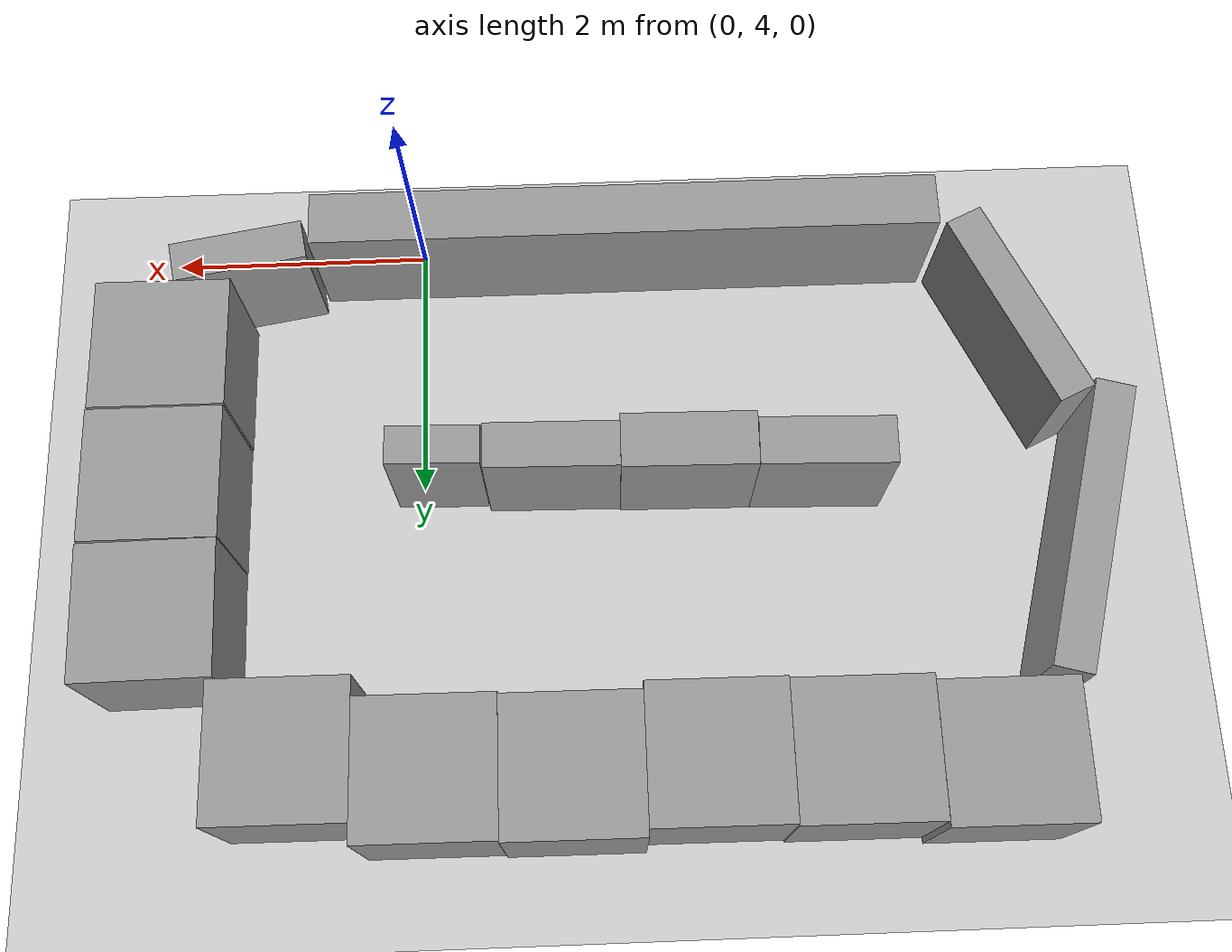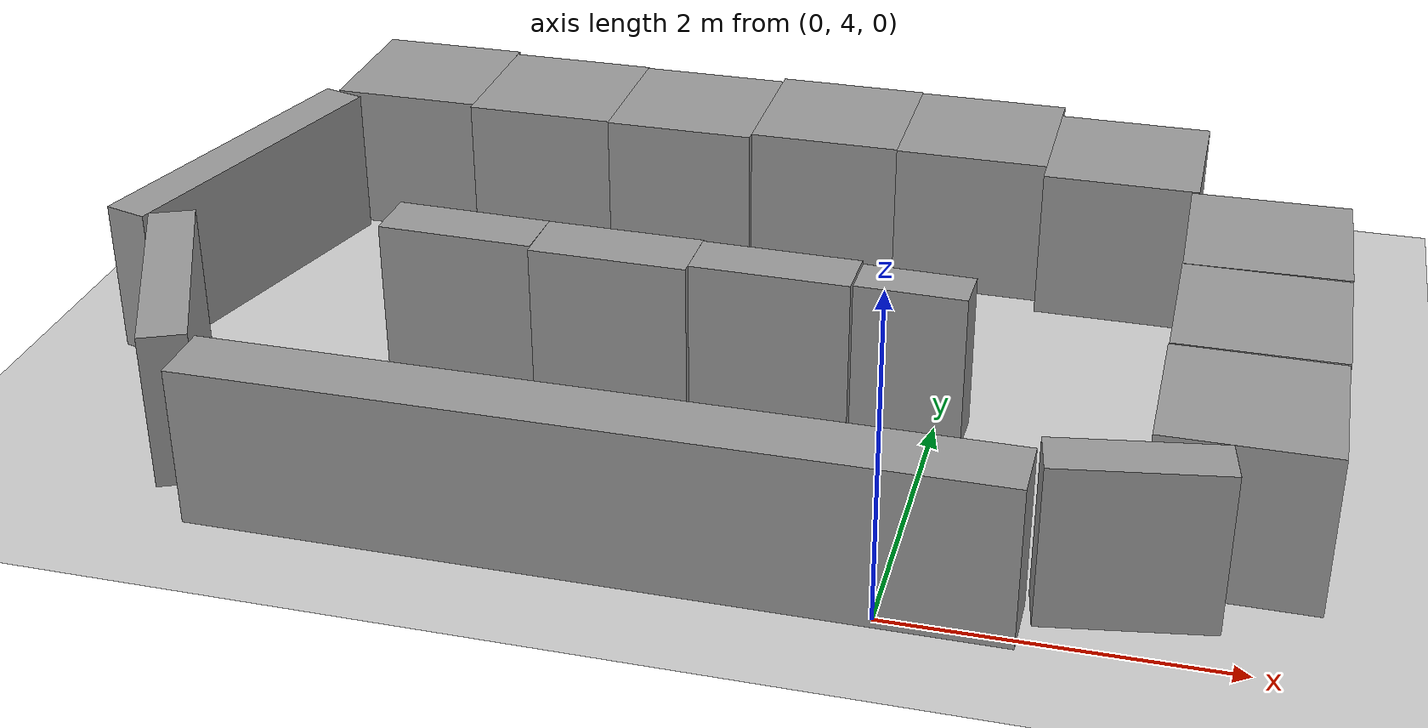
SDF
<sdf version="1.6">
 <world name="default">
  <light name="sun" type="directional">
   <pose>0 0 10 0 -0 0</pose>
   <diffuse>0.8 0.8 0.8 1</diffuse>
   <specular>0.1 0.1 0.1 1</specular>
   <attenuation>
    <range>1000</range>
    <constant>0.9</constant>
    <linear>0.01</linear>
    <quadratic>0.001</quadratic>
   </attenuation>
   <direction>-0.5 0.5 -1</direction>
  </light>
  <model name="ground_plane">
   <static>1</static>
   <link name="link">
    <collision name="collision">
     <geometry><plane><normal>0 0 1</normal><size>100 100</size></plane></geometry>
     <surface><friction><ode><mu>100</mu><mu2>50</mu2></ode></friction></surface>
    </collision>
    <visual name="visual">
     <cast_shadows>0</cast_shadows>
     <geometry><plane><normal>0 0 1</normal><size>100 100</size></plane></geometry>
     <material>
      <script><uri>file://media/materials/scripts/gazebo.material</uri><name>Gazebo/Grey</name></script>
     </material>
    </visual>
   </link>
  </model>
  <physics name="default_physics" default="0" type="ode">
   <real_time_update_rate>1000</real_time_update_rate>
   <max_step_size>0.001</max_step_size>
   <real_time_factor>1</real_time_factor>
   <ode>
    <solver>
     <type>quick</type>
     <iters>150</iters>
     <precon_iters>0</precon_iters>
     <sor>1.4</sor>
     <use_dynamic_moi_rescaling>1</use_dynamic_moi_rescaling>
    </solver>
    <constraints>
     <cfm>1e-05</cfm>
     <erp>0.2</erp>
     <contact_max_correcting_vel>2000</contact_max_correcting_vel>
     <contact_surface_layer>0.01</contact_surface_layer>
    </constraints>
   </ode>
  </physics>
  <scene><ambient>0.4 0.4 0.4 1</ambient><background>0.7 0.7 0.7 1</background><shadows>1</shadows></scene>
  <gravity>0 0 -9.8</gravity>
  <magnetic_field>6e-06 2.3e-05 -4.2e-05</magnetic_field>
  <atmosphere type="adiabatic"/>
  <spherical_coordinates>
   <surface_model>EARTH_WGS84</surface_model>
   <latitude_deg>0</latitude_deg>
   <longitude_deg>0</longitude_deg>
   <elevation>0</elevation>
   <heading_deg>0</heading_deg>
  </spherical_coordinates>
  <model name="unit_box_0">
   <pose>1.85734 6.1314 0.5 0 -0 0</pose>
   <link name="link">
    <inertial>
     <mass>1</mass>
     <inertia>
      <ixx>0.166667</ixx>
      <ixy>0</ixy>
      <ixz>0</ixz>
      <iyy>0.166667</iyy>
      <iyz>0</iyz>
      <izz>0.166667</izz>
     </inertia>
    </inertial>
    <collision name="collision"><geometry><box><size>1 1 1</size></box></geometry></collision>
    <visual name="visual">
     <geometry><box><size>1 1 1</size></box></geometry>
     <material>
      <script><name>Gazebo/Grey</name><uri>file://media/materials/scripts/gazebo.material</uri></script>
     </material>
    </visual>
   </link>
  </model>
  <model name="unit_box_1">
   <pose>1.84887 5.11853 0.5 0 0 -0.004144</pose>
   <link name="link">
    <inertial>
     <mass>1</mass>
     <inertia>
      <ixx>0.166667</ixx>
      <ixy>0</ixy>
      <ixz>0</ixz>
      <iyy>0.166667</iyy>
      <iyz>0</iyz>
      <izz>0.166667</izz>
     </inertia>
    </inertial>
    <collision name="collision"><geometry><box><size>1 1 1</size></box></geometry></collision>
    <visual name="visual">
     <geometry><box><size>1 1 1</size></box></geometry>
     <material>
      <script><name>Gazebo/Grey</name><uri>file://media/materials/scripts/gazebo.material</uri></script>
     </material>
    </visual>
   </link>
  </model>
  <model name="unit_box_2">
   <pose>-0.157188 5.99309 0.5 0 0 -0.025147</pose>
   <link name="link">
    <inertial>
     <mass>1</mass>
     <inertia>
      <ixx>0.166667</ixx>
      <ixy>0</ixy>
      <ixz>0</ixz>
      <iyy>0.166667</iyy>
      <iyz>0</iyz>
      <izz>0.166667</izz>
     </inertia>
    </inertial>
    <collision name="collision"><geometry><box><size>0.692545 0.290806 1</size></box></geometry></collision>
    <visual name="visual">
     <geometry><box><size>0.692545 0.290806 1</size></box></geometry>
     <material>
      <script><name>Gazebo/Grey</name><uri>file://media/materials/scripts/gazebo.material</uri></script>
     </material>
    </visual>
   </link>
  </model>
  <model name="unit_box_3">
   <pose>-1.01521 6.02207 0.5 0 0 -0.01548</pose>
   <link name="link">
    <inertial>
     <mass>1</mass>
     <inertia>
      <ixx>0.166667</ixx>
      <ixy>0</ixy>
      <ixz>0</ixz>
      <iyy>0.166667</iyy>
      <iyz>0</iyz>
      <izz>0.166667</izz>
     </inertia>
    </inertial>
    <collision name="collision"><geometry><box><size>1 0.34512 1</size></box></geometry></collision>
    <visual name="visual">
     <geometry><box><size>1 0.34512 1</size></box></geometry>
     <material>
      <script><name>Gazebo/Grey</name><uri>file://media/materials/scripts/gazebo.material</uri></script>
     </material>
    </visual>
   </link>
  </model>
  <model name="unit_box_3_clone">
   <pose>-2.01563 6.01665 0.5 0 0 -0.014145</pose>
   <link name="link">
    <inertial>
     <mass>1</mass>
     <inertia>
      <ixx>0.166667</ixx>
      <ixy>0</ixy>
      <ixz>0</ixz>
      <iyy>0.166667</iyy>
      <iyz>0</iyz>
      <izz>0.166667</izz>
     </inertia>
    </inertial>
    <collision name="collision"><geometry><box><size>1 0.410119 1</size></box></geometry></collision>
    <visual name="visual">
     <geometry><box><size>1 0.410119 1</size></box></geometry>
     <material>
      <script><name>Gazebo/Grey</name><uri>file://media/materials/scripts/gazebo.material</uri></script>
     </material>
    </visual>
   </link>
  </model>
  <model name="unit_box_3_clone_0">
   <pose>-3.0172 6.06203 0.5 0 0 -0.026045</pose>
   <link name="link">
    <inertial>
     <mass>1</mass>
     <inertia>
      <ixx>0.166667</ixx>
      <ixy>0</ixy>
      <ixz>0</ixz>
      <iyy>0.166667</iyy>
      <iyz>0</iyz>
      <izz>0.166667</izz>
     </inertia>
    </inertial>
    <collision name="collision"><geometry><box><size>1 0.361736 1</size></box></geometry></collision>
    <visual name="visual">
     <geometry><box><size>1 0.361736 1</size></box></geometry>
     <material>
      <script><name>Gazebo/Grey</name><uri>file://media/materials/scripts/gazebo.material</uri></script>
     </material>
    </visual>
   </link>
  </model>
  <model name="unit_box_3_clone_1">
   <pose>1.30335 4.38515 0.5 0 -0 0.165484</pose>
   <link name="link">
    <inertial>
     <mass>1</mass>
     <inertia>
      <ixx>0.166667</ixx>
      <ixy>0</ixy>
      <ixz>0</ixz>
      <iyy>0.166667</iyy>
      <iyz>0</iyz>
      <izz>0.166667</izz>
     </inertia>
    </inertial>
    <collision name="collision"><geometry><box><size>1 0.306345 1</size></box></geometry></collision>
    <visual name="visual">
     <geometry><box><size>1 0.306345 1</size></box></geometry>
     <material>
      <script><name>Gazebo/Grey</name><uri>file://media/materials/scripts/gazebo.material</uri></script>
     </material>
    </visual>
   </link>
  </model>
  <model name="unit_box_3_clone_5">
   <pose>-4.10143 8.33365 0.5 0 0 -0.003714</pose>
   <link name="link">
    <inertial>
     <mass>1</mass>
     <inertia>
      <ixx>0.166667</ixx>
      <ixy>0</ixy>
      <ixz>0</ixz>
      <iyy>0.166667</iyy>
      <iyz>0</iyz>
      <izz>0.166667</izz>
     </inertia>
    </inertial>
    <collision name="collision"><geometry><box><size>1 1 1</size></box></geometry></collision>
    <visual name="visual">
     <geometry><box><size>1 1 1</size></box></geometry>
     <material>
      <script><name>Gazebo/Grey</name><uri>file://media/materials/scripts/gazebo.material</uri></script>
     </material>
    </visual>
   </link>
  </model>
  <model name="unit_box_3_clone_6">
   <pose>-3.10147 8.28607 0.5 0 0 -0.003957</pose>
   <link name="link">
    <inertial>
     <mass>1</mass>
     <inertia>
      <ixx>0.166667</ixx>
      <ixy>0</ixy>
      <ixz>0</ixz>
      <iyy>0.166667</iyy>
      <iyz>0</iyz>
      <izz>0.166667</izz>
     </inertia>
    </inertial>
    <collision name="collision"><geometry><box><size>1 1 1</size></box></geometry></collision>
    <visual name="visual">
     <geometry><box><size>1 1 1</size></box></geometry>
     <material>
      <script><name>Gazebo/Grey</name><uri>file://media/materials/scripts/gazebo.material</uri></script>
     </material>
    </visual>
   </link>
  </model>
  <model name="unit_box_3_clone_7">
   <pose>-2.1015 8.2684 0.5 0 0 -0.003939</pose>
   <link name="link">
    <inertial>
     <mass>1</mass>
     <inertia>
      <ixx>0.166667</ixx>
      <ixy>0</ixy>
      <ixz>0</ixz>
      <iyy>0.166667</iyy>
      <iyz>0</iyz>
      <izz>0.166667</izz>
     </inertia>
    </inertial>
    <collision name="collision"><geometry><box><size>1 1 1</size></box></geometry></collision>
    <visual name="visual">
     <geometry><box><size>1 1 1</size></box></geometry>
     <material>
      <script><name>Gazebo/Grey</name><uri>file://media/materials/scripts/gazebo.material</uri></script>
     </material>
    </visual>
   </link>
  </model>
  <model name="unit_box_3_clone_8">
   <pose>-1.10129 8.32052 0.5 0 0 -0.003938</pose>
   <link name="link">
    <inertial>
     <mass>1</mass>
     <inertia>
      <ixx>0.166667</ixx>
      <ixy>0</ixy>
      <ixz>0</ixz>
      <iyy>0.166667</iyy>
      <iyz>0</iyz>
      <izz>0.166667</izz>
     </inertia>
    </inertial>
    <collision name="collision"><geometry><box><size>1 1 1</size></box></geometry></collision>
    <visual name="visual">
     <geometry><box><size>1 1 1</size></box></geometry>
     <material>
      <script><name>Gazebo/Grey</name><uri>file://media/materials/scripts/gazebo.material</uri></script>
     </material>
    </visual>
   </link>
  </model>
  <model name="unit_box_3_clone_9">
   <pose>-0.101298 8.30339 0.5 0 0 -0.003852</pose>
   <link name="link">
    <inertial>
     <mass>1</mass>
     <inertia>
      <ixx>0.166667</ixx>
      <ixy>0</ixy>
      <ixz>0</ixz>
      <iyy>0.166667</iyy>
      <iyz>0</iyz>
      <izz>0.166667</izz>
     </inertia>
    </inertial>
    <collision name="collision"><geometry><box><size>1 1 1</size></box></geometry></collision>
    <visual name="visual">
     <geometry><box><size>1 1 1</size></box></geometry>
     <material>
      <script><name>Gazebo/Grey</name><uri>file://media/materials/scripts/gazebo.material</uri></script>
     </material>
    </visual>
   </link>
  </model>
  <model name="unit_box_3_clone_10">
   <pose>0.898177 8.14979 0.5 0 0 -0.003733</pose>
   <link name="link">
    <inertial>
     <mass>1</mass>
     <inertia>
      <ixx>0.166667</ixx>
      <ixy>0</ixy>
      <ixz>0</ixz>
      <iyy>0.166667</iyy>
      <iyz>0</iyz>
      <izz>0.166667</izz>
     </inertia>
    </inertial>
    <collision name="collision"><geometry><box><size>1 1 1</size></box></geometry></collision>
    <visual name="visual">
     <geometry><box><size>1 1 1</size></box></geometry>
     <material>
      <script><name>Gazebo/Grey</name><uri>file://media/materials/scripts/gazebo.material</uri></script>
     </material>
    </visual>
   </link>
  </model>
  <model name="unit_box_3_clone_11">
   <pose>1.85374 7.14064 0.5 0 -0 0.013911</pose>
   <link name="link">
    <inertial>
     <mass>1</mass>
     <inertia>
      <ixx>0.166667</ixx>
      <ixy>0</ixy>
      <ixz>0</ixz>
      <iyy>0.166667</iyy>
      <iyz>0</iyz>
      <izz>0.166667</izz>
     </inertia>
    </inertial>
    <collision name="collision"><geometry><box><size>1 1 1</size></box></geometry></collision>
    <visual name="visual">
     <geometry><box><size>1 1 1</size></box></geometry>
     <material>
      <script><name>Gazebo/Grey</name><uri>file://media/materials/scripts/gazebo.material</uri></script>
     </material>
    </visual>
   </link>
  </model>
  <model name="unit_box_3_clone_0_clone_3">
   <pose>-4.52213 5.02759 0.499999 1e-06 0 0.428091</pose>
   <link name="link">
    <inertial>
     <mass>1</mass>
     <inertia>
      <ixx>0.166667</ixx>
      <ixy>0</ixy>
      <ixz>0</ixz>
      <iyy>0.166667</iyy>
      <iyz>0</iyz>
      <izz>0.166667</izz>
     </inertia>
    </inertial>
    <collision name="collision"><geometry><box><size>0.291627 1.6267 1</size></box></geometry></collision>
    <visual name="visual">
     <geometry><box><size>0.291627 1.6267 1</size></box></geometry>
     <material>
      <script><name>Gazebo/Grey</name><uri>file://media/materials/scripts/gazebo.material</uri></script>
     </material>
    </visual>
   </link>
  </model>
  <model name="unit_box_3_clone_0_clone_3_clone">
   <pose>-4.85253 6.74969 0.5 0 0 -0.272466</pose>
   <link name="link">
    <inertial>
     <mass>1</mass>
     <inertia>
      <ixx>0.166667</ixx>
      <ixy>0</ixy>
      <ixz>0</ixz>
      <iyy>0.166667</iyy>
      <iyz>0</iyz>
      <izz>0.166667</izz>
     </inertia>
    </inertial>
    <collision name="collision"><geometry><box><size>0.291627 2.19226 1</size></box></geometry></collision>
    <visual name="visual">
     <geometry><box><size>0.291627 2.19226 1</size></box></geometry>
     <material>
      <script><name>Gazebo/Grey</name><uri>file://media/materials/scripts/gazebo.material</uri></script>
     </material>
    </visual>
   </link>
  </model>
  <model name="unit_box_3_clone_clone">
   <pose>-1.61318 4.13696 0.498273 0 0.000723 -0.000618</pose>
   <link name="link">
    <inertial>
     <mass>1</mass>
     <inertia>
      <ixx>0.166667</ixx>
      <ixy>0</ixy>
      <ixz>0</ixz>
      <iyy>0.166667</iyy>
      <iyz>0</iyz>
      <izz>0.166667</izz>
     </inertia>
    </inertial>
    <collision name="collision"><geometry><box><size>4.78054 0.410119 1</size></box></geometry></collision>
    <visual name="visual">
     <geometry><box><size>4.78054 0.410119 1</size></box></geometry>
     <material>
      <script><name>Gazebo/Grey</name><uri>file://media/materials/scripts/gazebo.material</uri></script>
     </material>
    </visual>
   </link>
  </model>
 </world>
</sdf>
